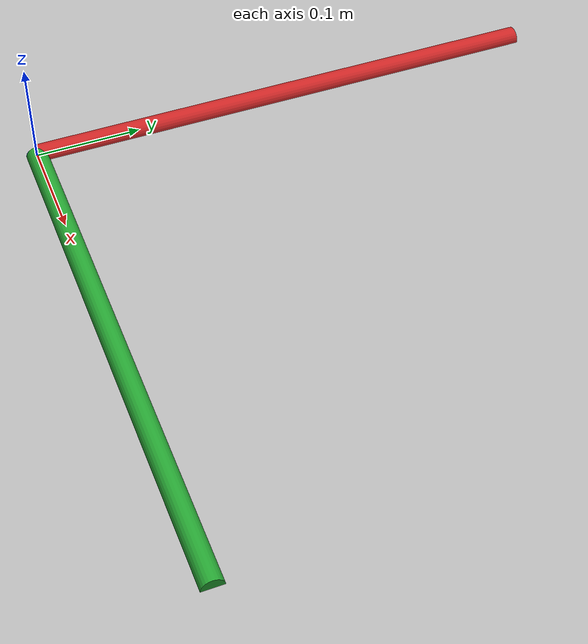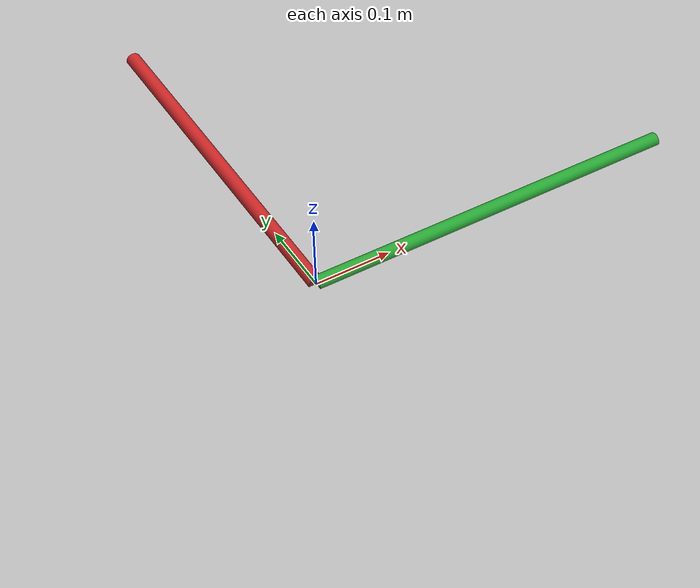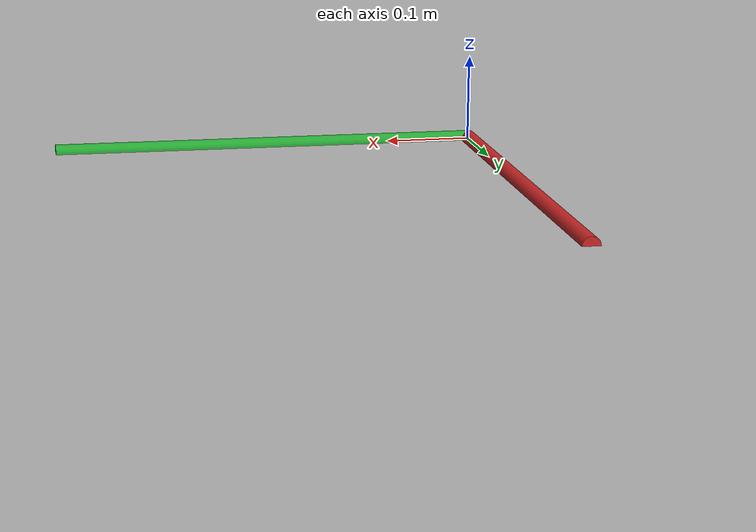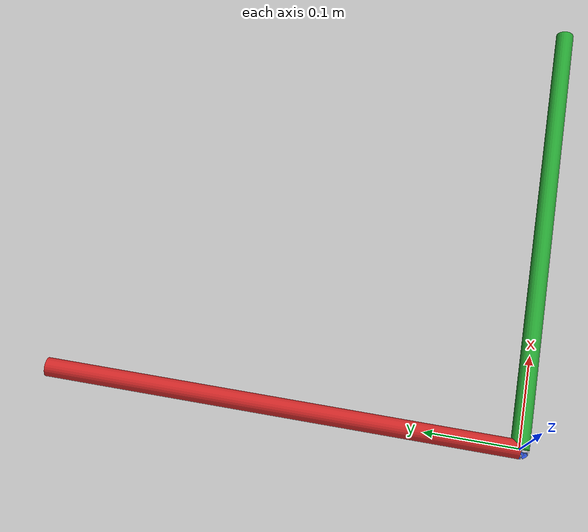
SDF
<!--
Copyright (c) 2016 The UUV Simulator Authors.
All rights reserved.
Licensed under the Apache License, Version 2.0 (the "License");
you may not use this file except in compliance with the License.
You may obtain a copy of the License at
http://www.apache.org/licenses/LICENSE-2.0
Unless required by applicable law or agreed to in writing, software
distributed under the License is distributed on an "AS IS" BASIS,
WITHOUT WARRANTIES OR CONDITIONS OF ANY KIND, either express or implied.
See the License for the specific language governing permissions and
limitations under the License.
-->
<sdf version="1.4">
 <world name="oceans_waves">
  <physics name="default_physics" default="true" type="ode">
   <max_step_size>0.002</max_step_size>
   <real_time_factor>1</real_time_factor>
   <real_time_update_rate>500</real_time_update_rate>
  </physics>
  <scene>
   <ambient>0.01 0.01 0.01 1.0</ambient>
   <sky><clouds><speed>12</speed></clouds></sky>
   <shadows>1</shadows>
  </scene>
  <spherical_coordinates>
   <latitude_deg>56.71897669633431</latitude_deg>
   <longitude_deg>3.515625</longitude_deg>
  </spherical_coordinates>
  <light type="directional" name="sun1">
   <pose>50 0 150 0 0 0</pose>
   <diffuse>1 1 1 1</diffuse>
   <specular>.1 .1 .1 1</specular>
   <direction>0.3 0.3 -1</direction>
   <cast_shadows>false</cast_shadows>
  </light>
  <light type="directional" name="sun_diffuse">
   <pose>-50 0 -150 0 0 0</pose>
   <diffuse>0.6 0.6 0.6 1</diffuse>
   <specular>0 0 0 1</specular>
   <direction>-0.3 -0.3 -1</direction>
   <cast_shadows>false</cast_shadows>
  </light>
  <light type="directional" name="sun_diffuse_1">
   <pose>-100 500 -20 0 0 0</pose>
   <diffuse>0.8 0.8 0.8 1</diffuse>
   <specular>1 1 1 1</specular>
   <direction>-1 -1 0</direction>
   <cast_shadows>false</cast_shadows>
  </light>
  <light type="directional" name="sun_diffuse_2">
   <pose>100 50 20 0 0 0</pose>
   <diffuse>0.6 0.6 0.6 1</diffuse>
   <specular>0 0 0 1</specular>
   <direction>-0.3 -0.3 -1</direction>
   <cast_shadows>false</cast_shadows>
  </light>
  <light type="directional" name="sun_diffuse_3">
   <pose>-150 -130 50 0 0 0</pose>
   <diffuse>0.6 0.6 0.6 1</diffuse>
   <specular>0.2 0.2 0.2 1</specular>
   <direction>0.5 0.5 -1</direction>
   <cast_shadows>false</cast_shadows>
  </light>
  <include><uri>model://ned_frame</uri></include>
  <include><uri>model://ocean</uri></include>
  <plugin name="underwater_current_plugin" filename="libuuv_underwater_current_ros_plugin.so">
   <namespace>hydrodynamics</namespace>
   <constant_current>
    <topic>current_velocity</topic>
    <velocity><mean>0</mean><min>0</min><max>5</max><mu>0.0</mu><noiseAmp>0.0</noiseAmp></velocity>
    <horizontal_angle>
     <mean>0</mean>
     <min>-3.141592653589793238</min>
     <max>3.141592653589793238</max>
     <mu>0.0</mu>
     <noiseAmp>0.0</noiseAmp>
    </horizontal_angle>
    <vertical_angle>
     <mean>0</mean>
     <min>-3.141592653589793238</min>
     <max>3.141592653589793238</max>
     <mu>0.0</mu>
     <noiseAmp>0.0</noiseAmp>
    </vertical_angle>
   </constant_current>
  </plugin>
  <plugin name="sc_interface" filename="libuuv_sc_ros_interface_plugin.so"/>
 </world>
</sdf>

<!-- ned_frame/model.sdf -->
<sdf version='1.5'>
    <model name="world_ned">

      <pose>0 0 0 0 0 0</pose>
      <static>true</static>

      <link name="world_ned">
        <gravity>0</gravity>
        <pose>0 0 0 3.14159265359 0 1.5707963267948966</pose>

        <visual name="N_visual">
          <pose>0.25 0 0 1.5707963267948966 0 1.5707963267948966</pose>
          <geometry>
            <cylinder>
              <radius>0.01</radius>
              <length>0.5</length>
            </cylinder>
          </geometry>
          <material>
            <script>
              <uri>file://media/materials/scripts/gazebo.material</uri>
              <name>Gazebo/Red</name>
            </script>
          </material>
        </visual>

        <visual name="E_visual">
          <pose>0 0.25 0 1.5707963267948966 0 0</pose>
          <geometry>
            <cylinder>
              <radius>0.01</radius>
              <length>0.5</length>
            </cylinder>
          </geometry>
          <material>
            <script>
              <uri>file://media/materials/scripts/gazebo.material</uri>
              <name>Gazebo/Green</name>
            </script>
          </material>
        </visual>

        <visual name="D_visual">
          <pose>0 0 0.25 0 0 0</pose>
          <geometry>
            <cylinder>
              <radius>0.01</radius>
              <length>0.5</length>
            </cylinder>
          </geometry>
          <material>
            <script>
              <uri>file://media/materials/scripts/gazebo.material</uri>
              <name>Gazebo/Blue</name>
            </script>
          </material>
        </visual>
      </link>
    </model>
</sdf>

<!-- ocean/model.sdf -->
<sdf version="1.6">
    <model name="ocean">
        <static>true</static>
        <link name="link">
            <visual name="visual">
                <geometry>
                    <mesh>
                        <uri>meshes/waterlow_small.dae</uri>
                    </mesh>
                </geometry>
                <plugin filename="gz-sim-shader-param-system" name="gz::sim::systems::ShaderParam">
                    <shader language="glsl">
                        <vertex>materials/programs/GerstnerWaves_vs_330.glsl</vertex>
                        <fragment>materials/programs/GerstnerWaves_fs_330.glsl</fragment>
                    </shader>
                    <shader language="metal">
                        <vertex>materials/programs/GerstnerWaves_vs.metal</vertex>
                        <fragment>materials/programs/GerstnerWaves_fs.metal</fragment>
                    </shader>
                    <param>
                        <shader>vertex</shader>
                        <name>Nwaves</name>
                        <type>int</type>
                        <value>0</value>
                    </param>
                    <param>
                        <shader>vertex</shader>
                        <name>rescale</name>
                        <type>float</type>
                        <value>0.125</value>
                    </param>
                    <param>
                        <shader>vertex</shader>
                        <name>bumpScale</name>
                        <type>float_array</type>
                        <value>75 75</value>
                    </param>
                    <param>
                        <shader>vertex</shader>
                        <name>bumpSpeed</name>
                        <type>float_array</type>
                        <value>0.01 0.0</value>
                    </param>
                    <param>
                        <shader>vertex</shader>
                        <name>amplitude</name>
                        <type>float_array</type>
                        <value>0.42 0.28, 0.21</value>
                    </param>
                    <param>
                        <shader>vertex</shader>
                        <name>wavenumber</name>
                        <type>float_array</type>
                        <value>0.028 0.0896 0.0504</value>
                    </param>
                    <param>
                        <shader>vertex</shader>
                        <name>omega</name>
                        <type>float_array</type>
                        <value>0.5 1.7 1.0</value>
                    </param>
                    <param>
                        <shader>vertex</shader>
                        <name>dir0</name>
                        <type>float_array</type>
                        <value>-1.0 0.0</value>
                    </param>
                    <param>
                        <shader>vertex</shader>
                        <name>dir1</name>
                        <type>float_array</type>
                        <value>-0.7 0.7</value>
                    </param>
                    <param>
                        <shader>vertex</shader>
                        <name>dir2</name>
                        <type>float_array</type>
                        <value>0.7 0.7</value>
                    </param>
                    <param>
                        <shader>vertex</shader>
                        <name>steepness</name>
                        <type>float_array</type>
                        <value>1.0 1.5 0.8</value>
                    </param>
                    <param>
                        <shader>vertex</shader>
                        <name>tau</name>
                        <type>float</type>
                        <value>2.0</value>
                    </param>
                    <param>
                        <shader>vertex</shader>
                        <name>camera_position_object_space</name>
                    </param>
                    <param>
                        <shader>vertex</shader>
                        <name>worldviewproj_matrix</name>
                    </param>
                    <param>
                        <shader>vertex</shader>
                        <name>t</name>
                        <value>TIME</value>
                    </param>
                    <param>
                        <shader>fragment</shader>
                        <name>hdrMultiplier</name>
                        <type>float</type>
                        <value>0.4</value>
                    </param>
                    <param>
                        <shader>fragment</shader>
                        <name>fresnelPower</name>
                        <type>float</type>
                        <value>5.0</value>
                    </param>
                    <param>
                        <shader>fragment</shader>
                        <name>shallowColor</name>
                        <type>float_array</type>
                        <value>0.0 0.1 0.2 1.0</value>
                    </param>
                    <param>
                        <shader>fragment</shader>
                        <name>deepColor</name>
                        <type>float_array</type>
                        <value>0.0 0.05 0.02 1.0</value>
                    </param>
                    <param>
                        <shader>fragment</shader>
                        <name>cubeMap</name>
                        <type>texture_cube</type>
                        <value>materials/textures/skybox_lowres.dds</value>
                        <!-- arg: texture coord set index -->
                        <arg>1</arg>
                    </param>
                    <param>
                        <shader>fragment</shader>
                        <name>bumpMap</name>
                        <type>texture</type>
                        <value>materials/textures/wave_normals.dds</value>
                    </param>
                </plugin>
            </visual>
        </link>
    </model>
</sdf>
